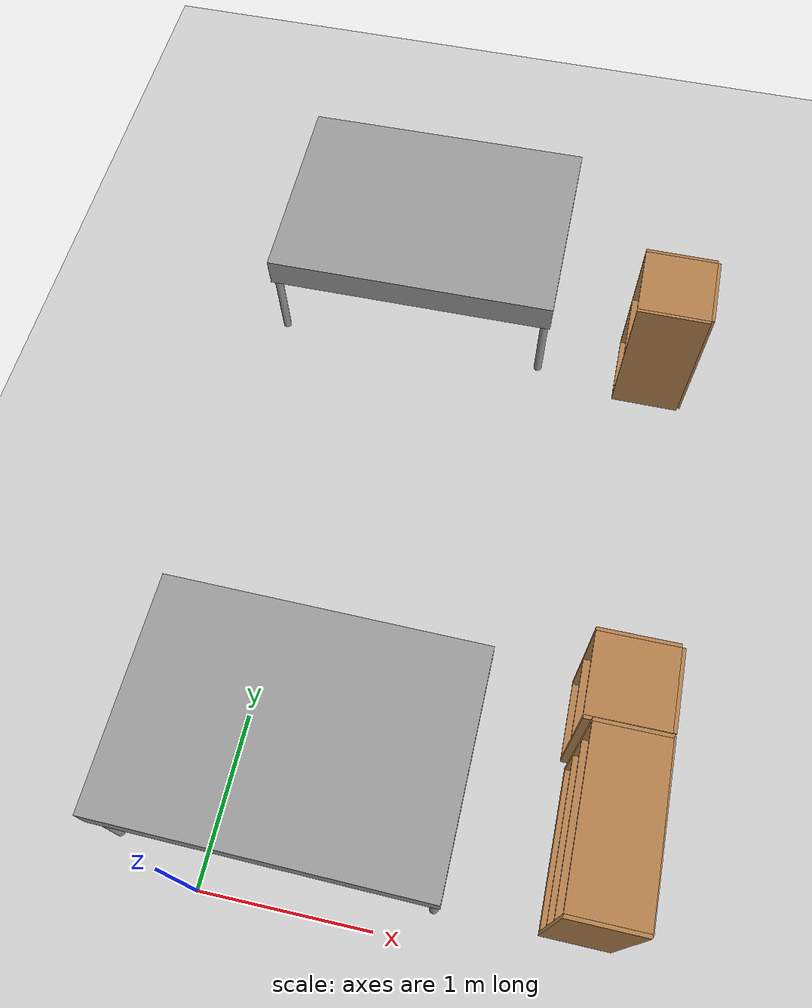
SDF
<sdf version="1.6">
 <world name="default">
  <model name="ground_plane">
   <static>1</static>
   <link name="link">
    <collision name="collision">
     <geometry><plane><normal>0 0 1</normal><size>100 100</size></plane></geometry>
     <surface>
      <contact><collide_bitmask>65535</collide_bitmask></contact>
      <friction><ode><mu>100</mu><mu2>50</mu2></ode></friction>
     </surface>
    </collision>
    <visual name="visual">
     <cast_shadows>0</cast_shadows>
     <geometry><plane><normal>0 0 1</normal><size>100 100</size></plane></geometry>
     <material>
      <script><uri>file://media/materials/scripts/gazebo.material</uri><name>Gazebo/Grey</name></script>
     </material>
    </visual>
   </link>
  </model>
  <model name="bed">
   <pose>0.544611 0.514424 0.569416 1e-06 0 -0.013106</pose>
   <link name="link_0">
    <pose>-0.152081 0.31625 0.061083 0 -0 0</pose>
    <inertial>
     <mass>1</mass>
     <inertia>
      <ixx>0.166667</ixx>
      <ixy>0</ixy>
      <ixz>0</ixz>
      <iyy>0.166667</iyy>
      <iyz>0</iyz>
      <izz>0.166667</izz>
     </inertia>
    </inertial>
    <visual name="visual">
     <geometry><box><size>1.905 1.345 0.205</size></box></geometry>
     <material>
      <lighting>1</lighting>
      <script><uri>file://media/materials/scripts/gazebo.material</uri><name>Gazebo/Grey</name></script>
      <shader type="pixel"><normal_map>__default__</normal_map></shader>
      <ambient>0.3 0.3 0.3 1</ambient>
      <diffuse>0.7 0.7 0.7 1</diffuse>
      <specular>0.01 0.01 0.01 1</specular>
      <emissive>0 0 0 1</emissive>
     </material>
    </visual>
    <collision name="collision">
     <geometry><box><size>1.905 1.345 0.205</size></box></geometry>
     <surface>
      <friction>
       <ode><mu>1</mu><mu2>1</mu2><fdir1>0 0 0</fdir1><slip1>0</slip1><slip2>0</slip2></ode>
       <torsional>
        <coefficient>1</coefficient>
        <patch_radius>0</patch_radius>
        <surface_radius>0</surface_radius>
        <use_patch_radius>1</use_patch_radius>
        <ode><slip>0</slip></ode>
       </torsional>
      </friction>
      <bounce><restitution_coefficient>0</restitution_coefficient><threshold>1e+06</threshold></bounce>
      <contact>
       <collide_without_contact>0</collide_without_contact>
       <collide_without_contact_bitmask>1</collide_without_contact_bitmask>
       <collide_bitmask>1</collide_bitmask>
       <ode>
        <soft_cfm>0</soft_cfm>
        <soft_erp>0.2</soft_erp>
        <kp>1e+13</kp>
        <kd>1</kd>
        <max_vel>0.01</max_vel>
        <min_depth>0</min_depth>
       </ode>
       <bullet>
        <split_impulse>1</split_impulse>
        <split_impulse_penetration_threshold>-0.01</split_impulse_penetration_threshold>
        <soft_cfm>0</soft_cfm>
        <soft_erp>0.2</soft_erp>
        <kp>1e+13</kp>
        <kd>1</kd>
       </bullet>
      </contact>
     </surface>
    </collision>
   </link>
   <link name="link_1">
    <pose>0.760419 0.94875 -0.305417 0 -0 0</pose>
    <inertial>
     <mass>1</mass>
     <inertia><ixx>0.145833</ixx><ixy>0</ixy><ixz>0</ixz><iyy>0.145833</iyy><iyz>0</iyz><izz>0.125</izz></inertia>
    </inertial>
    <visual name="visual">
     <geometry><cylinder><radius>0.026479</radius><length>0.528</length></cylinder></geometry>
     <material>
      <lighting>1</lighting>
      <script><uri>file://media/materials/scripts/gazebo.material</uri><name>Gazebo/Grey</name></script>
      <shader type="pixel"><normal_map>__default__</normal_map></shader>
      <ambient>0.3 0.3 0.3 1</ambient>
      <diffuse>0.7 0.7 0.7 1</diffuse>
      <specular>0.01 0.01 0.01 1</specular>
      <emissive>0 0 0 1</emissive>
     </material>
    </visual>
    <collision name="collision">
     <geometry><cylinder><radius>0.026479</radius><length>0.528</length></cylinder></geometry>
     <surface>
      <friction>
       <ode><mu>1</mu><mu2>1</mu2><fdir1>0 0 0</fdir1><slip1>0</slip1><slip2>0</slip2></ode>
       <torsional>
        <coefficient>1</coefficient>
        <patch_radius>0</patch_radius>
        <surface_radius>0</surface_radius>
        <use_patch_radius>1</use_patch_radius>
        <ode><slip>0</slip></ode>
       </torsional>
      </friction>
      <bounce><restitution_coefficient>0</restitution_coefficient><threshold>1e+06</threshold></bounce>
      <contact>
       <collide_without_contact>0</collide_without_contact>
       <collide_without_contact_bitmask>1</collide_without_contact_bitmask>
       <collide_bitmask>1</collide_bitmask>
       <ode>
        <soft_cfm>0</soft_cfm>
        <soft_erp>0.2</soft_erp>
        <kp>1e+13</kp>
        <kd>1</kd>
        <max_vel>0.01</max_vel>
        <min_depth>0</min_depth>
       </ode>
       <bullet>
        <split_impulse>1</split_impulse>
        <split_impulse_penetration_threshold>-0.01</split_impulse_penetration_threshold>
        <soft_cfm>0</soft_cfm>
        <soft_erp>0.2</soft_erp>
        <kp>1e+13</kp>
        <kd>1</kd>
       </bullet>
      </contact>
     </surface>
    </collision>
   </link>
   <link name="link_1_clone">
    <pose>0.760419 -0.31625 -0.305417 0 -0 0</pose>
    <inertial>
     <mass>1</mass>
     <inertia><ixx>0.145833</ixx><ixy>0</ixy><ixz>0</ixz><iyy>0.145833</iyy><iyz>0</iyz><izz>0.125</izz></inertia>
    </inertial>
    <visual name="visual">
     <geometry><cylinder><radius>0.026479</radius><length>0.528</length></cylinder></geometry>
     <material>
      <lighting>1</lighting>
      <script><uri>file://media/materials/scripts/gazebo.material</uri><name>Gazebo/Grey</name></script>
      <shader type="pixel"><normal_map>__default__</normal_map></shader>
      <ambient>0.3 0.3 0.3 1</ambient>
      <diffuse>0.7 0.7 0.7 1</diffuse>
      <specular>0.01 0.01 0.01 1</specular>
      <emissive>0 0 0 1</emissive>
     </material>
    </visual>
    <collision name="collision">
     <geometry><cylinder><radius>0.026479</radius><length>0.528</length></cylinder></geometry>
     <surface>
      <friction>
       <ode><mu>1</mu><mu2>1</mu2><fdir1>0 0 0</fdir1><slip1>0</slip1><slip2>0</slip2></ode>
       <torsional>
        <coefficient>1</coefficient>
        <patch_radius>0</patch_radius>
        <surface_radius>0</surface_radius>
        <use_patch_radius>1</use_patch_radius>
        <ode><slip>0</slip></ode>
       </torsional>
      </friction>
      <bounce><restitution_coefficient>0</restitution_coefficient><threshold>1e+06</threshold></bounce>
      <contact>
       <collide_without_contact>0</collide_without_contact>
       <collide_without_contact_bitmask>1</collide_without_contact_bitmask>
       <collide_bitmask>1</collide_bitmask>
       <ode>
        <soft_cfm>0</soft_cfm>
        <soft_erp>0.2</soft_erp>
        <kp>1e+13</kp>
        <kd>1</kd>
        <max_vel>0.01</max_vel>
        <min_depth>0</min_depth>
       </ode>
       <bullet>
        <split_impulse>1</split_impulse>
        <split_impulse_penetration_threshold>-0.01</split_impulse_penetration_threshold>
        <soft_cfm>0</soft_cfm>
        <soft_erp>0.2</soft_erp>
        <kp>1e+13</kp>
        <kd>1</kd>
       </bullet>
      </contact>
     </surface>
    </collision>
   </link>
   <link name="link_1_clone_clone">
    <pose>-1.06458 0.94875 -0.305417 0 -0 0</pose>
    <inertial>
     <mass>1</mass>
     <inertia><ixx>0.145833</ixx><ixy>0</ixy><ixz>0</ixz><iyy>0.145833</iyy><iyz>0</iyz><izz>0.125</izz></inertia>
    </inertial>
    <visual name="visual">
     <geometry><cylinder><radius>0.026479</radius><length>0.528</length></cylinder></geometry>
     <material>
      <lighting>1</lighting>
      <script><uri>file://media/materials/scripts/gazebo.material</uri><name>Gazebo/Grey</name></script>
      <shader type="pixel"><normal_map>__default__</normal_map></shader>
      <ambient>0.3 0.3 0.3 1</ambient>
      <diffuse>0.7 0.7 0.7 1</diffuse>
      <specular>0.01 0.01 0.01 1</specular>
      <emissive>0 0 0 1</emissive>
     </material>
    </visual>
    <collision name="collision">
     <geometry><cylinder><radius>0.026479</radius><length>0.528</length></cylinder></geometry>
     <surface>
      <friction>
       <ode><mu>1</mu><mu2>1</mu2><fdir1>0 0 0</fdir1><slip1>0</slip1><slip2>0</slip2></ode>
       <torsional>
        <coefficient>1</coefficient>
        <patch_radius>0</patch_radius>
        <surface_radius>0</surface_radius>
        <use_patch_radius>1</use_patch_radius>
        <ode><slip>0</slip></ode>
       </torsional>
      </friction>
      <bounce><restitution_coefficient>0</restitution_coefficient><threshold>1e+06</threshold></bounce>
      <contact>
       <collide_without_contact>0</collide_without_contact>
       <collide_without_contact_bitmask>1</collide_without_contact_bitmask>
       <collide_bitmask>1</collide_bitmask>
       <ode>
        <soft_cfm>0</soft_cfm>
        <soft_erp>0.2</soft_erp>
        <kp>1e+13</kp>
        <kd>1</kd>
        <max_vel>0.01</max_vel>
        <min_depth>0</min_depth>
       </ode>
       <bullet>
        <split_impulse>1</split_impulse>
        <split_impulse_penetration_threshold>-0.01</split_impulse_penetration_threshold>
        <soft_cfm>0</soft_cfm>
        <soft_erp>0.2</soft_erp>
        <kp>1e+13</kp>
        <kd>1</kd>
       </bullet>
      </contact>
     </surface>
    </collision>
   </link>
   <link name="link_1_clone_clone_clone">
    <pose>-1.06458 -0.31625 -0.305417 0 -0 0</pose>
    <inertial>
     <mass>1</mass>
     <inertia><ixx>0.145833</ixx><ixy>0</ixy><ixz>0</ixz><iyy>0.145833</iyy><iyz>0</iyz><izz>0.125</izz></inertia>
    </inertial>
    <visual name="visual">
     <geometry><cylinder><radius>0.026479</radius><length>0.528</length></cylinder></geometry>
     <material>
      <lighting>1</lighting>
      <script><uri>file://media/materials/scripts/gazebo.material</uri><name>Gazebo/Grey</name></script>
      <shader type="pixel"><normal_map>__default__</normal_map></shader>
      <ambient>0.3 0.3 0.3 1</ambient>
      <diffuse>0.7 0.7 0.7 1</diffuse>
      <specular>0.01 0.01 0.01 1</specular>
      <emissive>0 0 0 1</emissive>
     </material>
    </visual>
    <collision name="collision">
     <geometry><cylinder><radius>0.026479</radius><length>0.528</length></cylinder></geometry>
     <surface>
      <friction>
       <ode><mu>1</mu><mu2>1</mu2><fdir1>0 0 0</fdir1><slip1>0</slip1><slip2>0</slip2></ode>
       <torsional>
        <coefficient>1</coefficient>
        <patch_radius>0</patch_radius>
        <surface_radius>0</surface_radius>
        <use_patch_radius>1</use_patch_radius>
        <ode><slip>0</slip></ode>
       </torsional>
      </friction>
      <bounce><restitution_coefficient>0</restitution_coefficient><threshold>1e+06</threshold></bounce>
      <contact>
       <collide_without_contact>0</collide_without_contact>
       <collide_without_contact_bitmask>1</collide_without_contact_bitmask>
       <collide_bitmask>1</collide_bitmask>
       <ode>
        <soft_cfm>0</soft_cfm>
        <soft_erp>0.2</soft_erp>
        <kp>1e+13</kp>
        <kd>1</kd>
        <max_vel>0.01</max_vel>
        <min_depth>0</min_depth>
       </ode>
       <bullet>
        <split_impulse>1</split_impulse>
        <split_impulse_penetration_threshold>-0.01</split_impulse_penetration_threshold>
        <soft_cfm>0</soft_cfm>
        <soft_erp>0.2</soft_erp>
        <kp>1e+13</kp>
        <kd>1</kd>
       </bullet>
      </contact>
     </surface>
    </collision>
   </link>
   <joint name="link_0_JOINT_0" type="fixed">
    <parent>link_0</parent>
    <child>link_1</child>
    <physics>
     <ode><limit><cfm>0</cfm><erp>0.2</erp></limit><suspension><cfm>0</cfm><erp>0.2</erp></suspension></ode>
    </physics>
   </joint>
   <joint name="link_0_JOINT_1" type="fixed">
    <parent>link_0</parent>
    <child>link_1_clone</child>
    <physics>
     <ode><limit><cfm>0</cfm><erp>0.2</erp></limit><suspension><cfm>0</cfm><erp>0.2</erp></suspension></ode>
    </physics>
   </joint>
   <joint name="link_0_JOINT_2" type="fixed">
    <parent>link_0</parent>
    <child>link_1_clone_clone</child>
    <physics>
     <ode><limit><cfm>0</cfm><erp>0.2</erp></limit><suspension><cfm>0</cfm><erp>0.2</erp></suspension></ode>
    </physics>
   </joint>
   <joint name="link_0_JOINT_3" type="fixed">
    <parent>link_0</parent>
    <child>link_1_clone_clone_clone</child>
    <pose>-0.01 0 0 0 -0 0</pose>
    <physics>
     <ode><limit><cfm>0</cfm><erp>0.2</erp></limit><suspension><cfm>0</cfm><erp>0.2</erp></suspension></ode>
    </physics>
   </joint>
   <static>0</static>
  </model>
  <model name="cabinet">
   <static>1</static>
   <link name="cabinet_bottom_plate">
    <inertial>
     <pose>0 0 -1 0 -0 0</pose>
     <inertia><ixx>2.05</ixx><ixy>0</ixy><ixz>0</ixz><iyy>2.05</iyy><iyz>0</iyz><izz>2.05</izz></inertia>
     <mass>25</mass>
    </inertial>
    <collision name="cabinet_bottom_plate_geom">
     <pose>0 0 0.01 0 -0 0</pose>
     <geometry><box><size>0.45 0.45 0.02</size></box></geometry>
    </collision>
    <visual name="cabinet_bottom_plate_geom_visual">
     <pose>0 0 0.01 0 -0 0</pose>
     <geometry><box><size>0.45 0.45 0.02</size></box></geometry>
     <material>
      <script><uri>file://media/materials/scripts/gazebo.material</uri><name>Gazebo/Wood</name></script>
     </material>
    </visual>
    <collision name="cabinet_bottom_plate_geom_cabinet_back_plate">
     <pose>0.235 0 0.51 0 -0 0</pose>
     <geometry><box><size>0.02 0.45 1.02</size></box></geometry>
    </collision>
    <visual name="cabinet_bottom_plate_geom_cabinet_back_plate_visual">
     <pose>0.235 0 0.51 0 -0 0</pose>
     <geometry><box><size>0.02 0.45 1.02</size></box></geometry>
     <material>
      <script><uri>file://media/materials/scripts/gazebo.material</uri><name>Gazebo/Wood</name></script>
     </material>
    </visual>
    <collision name="cabinet_bottom_plate_geom_cabinet_left_plate">
     <pose>0 0.235 0.51 0 -0 0</pose>
     <geometry><box><size>0.45 0.02 1.02</size></box></geometry>
    </collision>
    <visual name="cabinet_bottom_plate_geom_cabinet_left_plate_visual">
     <pose>0 0.235 0.51 0 -0 0</pose>
     <geometry><box><size>0.45 0.02 1.02</size></box></geometry>
     <material>
      <script><uri>file://media/materials/scripts/gazebo.material</uri><name>Gazebo/Wood</name></script>
     </material>
    </visual>
    <collision name="cabinet_bottom_plate_geom_cabinet_middle_plate">
     <pose>0 0 0.51 0 -0 0</pose>
     <geometry><box><size>0.45 0.45 0.02</size></box></geometry>
    </collision>
    <visual name="cabinet_bottom_plate_geom_cabinet_middle_plate_visual">
     <pose>0 0 0.51 0 -0 0</pose>
     <geometry><box><size>0.45 0.45 0.02</size></box></geometry>
     <material>
      <script><uri>file://media/materials/scripts/gazebo.material</uri><name>Gazebo/Wood</name></script>
     </material>
    </visual>
    <collision name="cabinet_bottom_plate_geom_cabinet_right_plate">
     <pose>0 -0.235 0.51 0 -0 0</pose>
     <geometry><box><size>0.45 0.02 1.02</size></box></geometry>
    </collision>
    <visual name="cabinet_bottom_plate_geom_cabinet_right_plate_visual">
     <pose>0 -0.235 0.51 0 -0 0</pose>
     <geometry><box><size>0.45 0.02 1.02</size></box></geometry>
     <material>
      <script><uri>file://media/materials/scripts/gazebo.material</uri><name>Gazebo/Wood</name></script>
     </material>
    </visual>
    <collision name="cabinet_bottom_plate_geom_cabinet_top_plate">
     <pose>0 0 1.01 0 -0 0</pose>
     <geometry><box><size>0.45 0.45 0.02</size></box></geometry>
    </collision>
    <visual name="cabinet_bottom_plate_geom_cabinet_top_plate_visual">
     <pose>0 0 1.01 0 -0 0</pose>
     <geometry><box><size>0.45 0.45 0.02</size></box></geometry>
     <material>
      <script><uri>file://media/materials/scripts/gazebo.material</uri><name>Gazebo/Wood</name></script>
     </material>
    </visual>
   </link>
   <pose>2.0821 1.37187 0 0 -0 0</pose>
  </model>
  <model name="bookshelf">
   <static>1</static>
   <link name="link">
    <inertial><mass>1</mass></inertial>
    <collision name="back">
     <pose>0 0.005 0.6 0 -0 0</pose>
     <geometry><box><size>0.9 0.01 1.2</size></box></geometry>
    </collision>
    <visual name="visual1">
     <pose>0 0.005 0.6 0 -0 0</pose>
     <geometry><box><size>0.9 0.01 1.2</size></box></geometry>
     <material>
      <script><uri>file://media/materials/scripts/gazebo.material</uri><name>Gazebo/Wood</name></script>
     </material>
    </visual>
    <collision name="left_side">
     <pose>0.45 -0.195 0.6 0 -0 0</pose>
     <geometry><box><size>0.02 0.4 1.2</size></box></geometry>
    </collision>
    <visual name="visual2">
     <pose>0.45 -0.195 0.6 0 -0 0</pose>
     <geometry><box><size>0.02 0.4 1.2</size></box></geometry>
     <material>
      <script><uri>file://media/materials/scripts/gazebo.material</uri><name>Gazebo/Wood</name></script>
     </material>
    </visual>
    <collision name="right_side">
     <pose>-0.45 -0.195 0.6 0 -0 0</pose>
     <geometry><box><size>0.02 0.4 1.2</size></box></geometry>
    </collision>
    <visual name="visual3">
     <pose>-0.45 -0.195 0.6 0 -0 0</pose>
     <geometry><box><size>0.02 0.4 1.2</size></box></geometry>
     <material>
      <script><uri>file://media/materials/scripts/gazebo.material</uri><name>Gazebo/Wood</name></script>
     </material>
    </visual>
    <collision name="bottom">
     <pose>0 -0.195 0.03 0 -0 0</pose>
     <geometry><box><size>0.88 0.4 0.06</size></box></geometry>
    </collision>
    <visual name="visual4">
     <pose>0 -0.195 0.03 0 -0 0</pose>
     <geometry><box><size>0.88 0.4 0.06</size></box></geometry>
     <material>
      <script><uri>file://media/materials/scripts/gazebo.material</uri><name>Gazebo/Wood</name></script>
     </material>
    </visual>
    <collision name="top">
     <pose>0 -0.195 1.19 0 -0 0</pose>
     <geometry><box><size>0.88 0.4 0.02</size></box></geometry>
    </collision>
    <visual name="visual5">
     <pose>0 -0.195 1.19 0 -0 0</pose>
     <geometry><box><size>0.88 0.4 0.02</size></box></geometry>
     <material>
      <script><uri>file://media/materials/scripts/gazebo.material</uri><name>Gazebo/Wood</name></script>
     </material>
    </visual>
    <collision name="low_shelf">
     <pose>0 -0.195 0.43 0 -0 0</pose>
     <geometry><box><size>0.88 0.4 0.02</size></box></geometry>
    </collision>
    <visual name="visual6">
     <pose>0 -0.195 0.43 0 -0 0</pose>
     <geometry><box><size>0.88 0.4 0.02</size></box></geometry>
     <material>
      <script><uri>file://media/materials/scripts/gazebo.material</uri><name>Gazebo/Wood</name></script>
     </material>
    </visual>
    <collision name="high_shelf">
     <pose>0 -0.195 0.8 0 -0 0</pose>
     <geometry><box><size>0.88 0.4 0.02</size></box></geometry>
    </collision>
    <visual name="visual7">
     <pose>0 -0.195 0.8 0 -0 0</pose>
     <geometry><box><size>0.88 0.4 0.02</size></box></geometry>
     <material>
      <script><uri>file://media/materials/scripts/gazebo.material</uri><name>Gazebo/Wood</name></script>
     </material>
    </visual>
   </link>
   <pose>2.2813 0.63363 0 0 0 -1.57404</pose>
  </model>
  <model name="bed_clone_2">
   <link name="link_0">
    <pose>-0.152081 0.31625 0.061083 0 -0 0</pose>
    <inertial>
     <mass>1</mass>
     <inertia>
      <ixx>0.166667</ixx>
      <ixy>0</ixy>
      <ixz>0</ixz>
      <iyy>0.166667</iyy>
      <iyz>0</iyz>
      <izz>0.166667</izz>
     </inertia>
    </inertial>
    <visual name="visual">
     <geometry><box><size>1.905 1.345 0.205</size></box></geometry>
     <material>
      <lighting>1</lighting>
      <script><uri>file://media/materials/scripts/gazebo.material</uri><name>Gazebo/Grey</name></script>
      <shader type="pixel"><normal_map>__default__</normal_map></shader>
      <ambient>0.3 0.3 0.3 1</ambient>
      <diffuse>0.7 0.7 0.7 1</diffuse>
      <specular>0.01 0.01 0.01 1</specular>
      <emissive>0 0 0 1</emissive>
     </material>
    </visual>
    <collision name="collision">
     <geometry><box><size>1.905 1.345 0.205</size></box></geometry>
     <surface>
      <friction>
       <ode><mu>1</mu><mu2>1</mu2><fdir1>0 0 0</fdir1><slip1>0</slip1><slip2>0</slip2></ode>
       <torsional>
        <coefficient>1</coefficient>
        <patch_radius>0</patch_radius>
        <surface_radius>0</surface_radius>
        <use_patch_radius>1</use_patch_radius>
        <ode><slip>0</slip></ode>
       </torsional>
      </friction>
      <bounce><restitution_coefficient>0</restitution_coefficient><threshold>1e+06</threshold></bounce>
      <contact>
       <collide_without_contact>0</collide_without_contact>
       <collide_without_contact_bitmask>1</collide_without_contact_bitmask>
       <collide_bitmask>1</collide_bitmask>
       <ode>
        <soft_cfm>0</soft_cfm>
        <soft_erp>0.2</soft_erp>
        <kp>1e+13</kp>
        <kd>1</kd>
        <max_vel>0.01</max_vel>
        <min_depth>0</min_depth>
       </ode>
       <bullet>
        <split_impulse>1</split_impulse>
        <split_impulse_penetration_threshold>-0.01</split_impulse_penetration_threshold>
        <soft_cfm>0</soft_cfm>
        <soft_erp>0.2</soft_erp>
        <kp>1e+13</kp>
        <kd>1</kd>
       </bullet>
      </contact>
     </surface>
    </collision>
   </link>
   <link name="link_1">
    <pose>0.760419 0.94875 -0.305417 0 -0 0</pose>
    <inertial>
     <mass>1</mass>
     <inertia><ixx>0.145833</ixx><ixy>0</ixy><ixz>0</ixz><iyy>0.145833</iyy><iyz>0</iyz><izz>0.125</izz></inertia>
    </inertial>
    <visual name="visual">
     <geometry><cylinder><radius>0.026479</radius><length>0.528</length></cylinder></geometry>
     <material>
      <lighting>1</lighting>
      <script><uri>file://media/materials/scripts/gazebo.material</uri><name>Gazebo/Grey</name></script>
      <shader type="pixel"><normal_map>__default__</normal_map></shader>
      <ambient>0.3 0.3 0.3 1</ambient>
      <diffuse>0.7 0.7 0.7 1</diffuse>
      <specular>0.01 0.01 0.01 1</specular>
      <emissive>0 0 0 1</emissive>
     </material>
    </visual>
    <collision name="collision">
     <geometry><cylinder><radius>0.026479</radius><length>0.528</length></cylinder></geometry>
     <surface>
      <friction>
       <ode><mu>1</mu><mu2>1</mu2><fdir1>0 0 0</fdir1><slip1>0</slip1><slip2>0</slip2></ode>
       <torsional>
        <coefficient>1</coefficient>
        <patch_radius>0</patch_radius>
        <surface_radius>0</surface_radius>
        <use_patch_radius>1</use_patch_radius>
        <ode><slip>0</slip></ode>
       </torsional>
      </friction>
      <bounce><restitution_coefficient>0</restitution_coefficient><threshold>1e+06</threshold></bounce>
      <contact>
       <collide_without_contact>0</collide_without_contact>
       <collide_without_contact_bitmask>1</collide_without_contact_bitmask>
       <collide_bitmask>1</collide_bitmask>
       <ode>
        <soft_cfm>0</soft_cfm>
        <soft_erp>0.2</soft_erp>
        <kp>1e+13</kp>
        <kd>1</kd>
        <max_vel>0.01</max_vel>
        <min_depth>0</min_depth>
       </ode>
       <bullet>
        <split_impulse>1</split_impulse>
        <split_impulse_penetration_threshold>-0.01</split_impulse_penetration_threshold>
        <soft_cfm>0</soft_cfm>
        <soft_erp>0.2</soft_erp>
        <kp>1e+13</kp>
        <kd>1</kd>
       </bullet>
      </contact>
     </surface>
    </collision>
   </link>
   <link name="link_1_clone">
    <pose>0.760419 -0.31625 -0.305417 0 -0 0</pose>
    <inertial>
     <mass>1</mass>
     <inertia><ixx>0.145833</ixx><ixy>0</ixy><ixz>0</ixz><iyy>0.145833</iyy><iyz>0</iyz><izz>0.125</izz></inertia>
    </inertial>
    <visual name="visual">
     <geometry><cylinder><radius>0.026479</radius><length>0.528</length></cylinder></geometry>
     <material>
      <lighting>1</lighting>
      <script><uri>file://media/materials/scripts/gazebo.material</uri><name>Gazebo/Grey</name></script>
      <shader type="pixel"><normal_map>__default__</normal_map></shader>
      <ambient>0.3 0.3 0.3 1</ambient>
      <diffuse>0.7 0.7 0.7 1</diffuse>
      <specular>0.01 0.01 0.01 1</specular>
      <emissive>0 0 0 1</emissive>
     </material>
    </visual>
    <collision name="collision">
     <geometry><cylinder><radius>0.026479</radius><length>0.528</length></cylinder></geometry>
     <surface>
      <friction>
       <ode><mu>1</mu><mu2>1</mu2><fdir1>0 0 0</fdir1><slip1>0</slip1><slip2>0</slip2></ode>
       <torsional>
        <coefficient>1</coefficient>
        <patch_radius>0</patch_radius>
        <surface_radius>0</surface_radius>
        <use_patch_radius>1</use_patch_radius>
        <ode><slip>0</slip></ode>
       </torsional>
      </friction>
      <bounce><restitution_coefficient>0</restitution_coefficient><threshold>1e+06</threshold></bounce>
      <contact>
       <collide_without_contact>0</collide_without_contact>
       <collide_without_contact_bitmask>1</collide_without_contact_bitmask>
       <collide_bitmask>1</collide_bitmask>
       <ode>
        <soft_cfm>0</soft_cfm>
        <soft_erp>0.2</soft_erp>
        <kp>1e+13</kp>
        <kd>1</kd>
        <max_vel>0.01</max_vel>
        <min_depth>0</min_depth>
       </ode>
       <bullet>
        <split_impulse>1</split_impulse>
        <split_impulse_penetration_threshold>-0.01</split_impulse_penetration_threshold>
        <soft_cfm>0</soft_cfm>
        <soft_erp>0.2</soft_erp>
        <kp>1e+13</kp>
        <kd>1</kd>
       </bullet>
      </contact>
     </surface>
    </collision>
   </link>
   <link name="link_1_clone_clone">
    <pose>-1.06458 0.94875 -0.305417 0 -0 0</pose>
    <inertial>
     <mass>1</mass>
     <inertia><ixx>0.145833</ixx><ixy>0</ixy><ixz>0</ixz><iyy>0.145833</iyy><iyz>0</iyz><izz>0.125</izz></inertia>
    </inertial>
    <visual name="visual">
     <geometry><cylinder><radius>0.026479</radius><length>0.528</length></cylinder></geometry>
     <material>
      <lighting>1</lighting>
      <script><uri>file://media/materials/scripts/gazebo.material</uri><name>Gazebo/Grey</name></script>
      <shader type="pixel"><normal_map>__default__</normal_map></shader>
      <ambient>0.3 0.3 0.3 1</ambient>
      <diffuse>0.7 0.7 0.7 1</diffuse>
      <specular>0.01 0.01 0.01 1</specular>
      <emissive>0 0 0 1</emissive>
     </material>
    </visual>
    <collision name="collision">
     <geometry><cylinder><radius>0.026479</radius><length>0.528</length></cylinder></geometry>
     <surface>
      <friction>
       <ode><mu>1</mu><mu2>1</mu2><fdir1>0 0 0</fdir1><slip1>0</slip1><slip2>0</slip2></ode>
       <torsional>
        <coefficient>1</coefficient>
        <patch_radius>0</patch_radius>
        <surface_radius>0</surface_radius>
        <use_patch_radius>1</use_patch_radius>
        <ode><slip>0</slip></ode>
       </torsional>
      </friction>
      <bounce><restitution_coefficient>0</restitution_coefficient><threshold>1e+06</threshold></bounce>
      <contact>
       <collide_without_contact>0</collide_without_contact>
       <collide_without_contact_bitmask>1</collide_without_contact_bitmask>
       <collide_bitmask>1</collide_bitmask>
       <ode>
        <soft_cfm>0</soft_cfm>
        <soft_erp>0.2</soft_erp>
        <kp>1e+13</kp>
        <kd>1</kd>
        <max_vel>0.01</max_vel>
        <min_depth>0</min_depth>
       </ode>
       <bullet>
        <split_impulse>1</split_impulse>
        <split_impulse_penetration_threshold>-0.01</split_impulse_penetration_threshold>
        <soft_cfm>0</soft_cfm>
        <soft_erp>0.2</soft_erp>
        <kp>1e+13</kp>
        <kd>1</kd>
       </bullet>
      </contact>
     </surface>
    </collision>
   </link>
   <link name="link_1_clone_clone_clone">
    <pose>-1.06458 -0.31625 -0.305417 0 -0 0</pose>
    <inertial>
     <mass>1</mass>
     <inertia><ixx>0.145833</ixx><ixy>0</ixy><ixz>0</ixz><iyy>0.145833</iyy><iyz>0</iyz><izz>0.125</izz></inertia>
    </inertial>
    <visual name="visual">
     <geometry><cylinder><radius>0.026479</radius><length>0.528</length></cylinder></geometry>
     <material>
      <lighting>1</lighting>
      <script><uri>file://media/materials/scripts/gazebo.material</uri><name>Gazebo/Grey</name></script>
      <shader type="pixel"><normal_map>__default__</normal_map></shader>
      <ambient>0.3 0.3 0.3 1</ambient>
      <diffuse>0.7 0.7 0.7 1</diffuse>
      <specular>0.01 0.01 0.01 1</specular>
      <emissive>0 0 0 1</emissive>
     </material>
    </visual>
    <collision name="collision">
     <geometry><cylinder><radius>0.026479</radius><length>0.528</length></cylinder></geometry>
     <surface>
      <friction>
       <ode><mu>1</mu><mu2>1</mu2><fdir1>0 0 0</fdir1><slip1>0</slip1><slip2>0</slip2></ode>
       <torsional>
        <coefficient>1</coefficient>
        <patch_radius>0</patch_radius>
        <surface_radius>0</surface_radius>
        <use_patch_radius>1</use_patch_radius>
        <ode><slip>0</slip></ode>
       </torsional>
      </friction>
      <bounce><restitution_coefficient>0</restitution_coefficient><threshold>1e+06</threshold></bounce>
      <contact>
       <collide_without_contact>0</collide_without_contact>
       <collide_without_contact_bitmask>1</collide_without_contact_bitmask>
       <collide_bitmask>1</collide_bitmask>
       <ode>
        <soft_cfm>0</soft_cfm>
        <soft_erp>0.2</soft_erp>
        <kp>1e+13</kp>
        <kd>1</kd>
        <max_vel>0.01</max_vel>
        <min_depth>0</min_depth>
       </ode>
       <bullet>
        <split_impulse>1</split_impulse>
        <split_impulse_penetration_threshold>-0.01</split_impulse_penetration_threshold>
        <soft_cfm>0</soft_cfm>
        <soft_erp>0.2</soft_erp>
        <kp>1e+13</kp>
        <kd>1</kd>
       </bullet>
      </contact>
     </surface>
    </collision>
   </link>
   <joint name="link_0_JOINT_0" type="fixed">
    <parent>link_0</parent>
    <child>link_1</child>
    <physics>
     <ode><limit><cfm>0</cfm><erp>0.2</erp></limit><suspension><cfm>0</cfm><erp>0.2</erp></suspension></ode>
    </physics>
   </joint>
   <joint name="link_0_JOINT_1" type="fixed">
    <parent>link_0</parent>
    <child>link_1_clone</child>
    <physics>
     <ode><limit><cfm>0</cfm><erp>0.2</erp></limit><suspension><cfm>0</cfm><erp>0.2</erp></suspension></ode>
    </physics>
   </joint>
   <joint name="link_0_JOINT_2" type="fixed">
    <parent>link_0</parent>
    <child>link_1_clone_clone</child>
    <physics>
     <ode><limit><cfm>0</cfm><erp>0.2</erp></limit><suspension><cfm>0</cfm><erp>0.2</erp></suspension></ode>
    </physics>
   </joint>
   <joint name="link_0_JOINT_3" type="fixed">
    <parent>link_0</parent>
    <child>link_1_clone_clone_clone</child>
    <pose>-0.01 0 0 0 -0 0</pose>
    <physics>
     <ode><limit><cfm>0</cfm><erp>0.2</erp></limit><suspension><cfm>0</cfm><erp>0.2</erp></suspension></ode>
    </physics>
   </joint>
   <static>0</static>
   <pose>0.511001 4.11999 0.569416 -2e-06 -3e-06 0.006972</pose>
  </model>
  <model name="cabinet_clone">
   <static>1</static>
   <link name="cabinet_bottom_plate">
    <inertial>
     <pose>0 0 -1 0 -0 0</pose>
     <inertia><ixx>2.05</ixx><ixy>0</ixy><ixz>0</ixz><iyy>2.05</iyy><iyz>0</iyz><izz>2.05</izz></inertia>
     <mass>25</mass>
    </inertial>
    <collision name="cabinet_bottom_plate_geom">
     <pose>0 0 0.01 0 -0 0</pose>
     <geometry><box><size>0.45 0.45 0.02</size></box></geometry>
    </collision>
    <visual name="cabinet_bottom_plate_geom_visual">
     <pose>0 0 0.01 0 -0 0</pose>
     <geometry><box><size>0.45 0.45 0.02</size></box></geometry>
     <material>
      <script><uri>file://media/materials/scripts/gazebo.material</uri><name>Gazebo/Wood</name></script>
     </material>
    </visual>
    <collision name="cabinet_bottom_plate_geom_cabinet_back_plate">
     <pose>0.235 0 0.51 0 -0 0</pose>
     <geometry><box><size>0.02 0.45 1.02</size></box></geometry>
    </collision>
    <visual name="cabinet_bottom_plate_geom_cabinet_back_plate_visual">
     <pose>0.235 0 0.51 0 -0 0</pose>
     <geometry><box><size>0.02 0.45 1.02</size></box></geometry>
     <material>
      <script><uri>file://media/materials/scripts/gazebo.material</uri><name>Gazebo/Wood</name></script>
     </material>
    </visual>
    <collision name="cabinet_bottom_plate_geom_cabinet_left_plate">
     <pose>0 0.235 0.51 0 -0 0</pose>
     <geometry><box><size>0.45 0.02 1.02</size></box></geometry>
    </collision>
    <visual name="cabinet_bottom_plate_geom_cabinet_left_plate_visual">
     <pose>0 0.235 0.51 0 -0 0</pose>
     <geometry><box><size>0.45 0.02 1.02</size></box></geometry>
     <material>
      <script><uri>file://media/materials/scripts/gazebo.material</uri><name>Gazebo/Wood</name></script>
     </material>
    </visual>
    <collision name="cabinet_bottom_plate_geom_cabinet_middle_plate">
     <pose>0 0 0.51 0 -0 0</pose>
     <geometry><box><size>0.45 0.45 0.02</size></box></geometry>
    </collision>
    <visual name="cabinet_bottom_plate_geom_cabinet_middle_plate_visual">
     <pose>0 0 0.51 0 -0 0</pose>
     <geometry><box><size>0.45 0.45 0.02</size></box></geometry>
     <material>
      <script><uri>file://media/materials/scripts/gazebo.material</uri><name>Gazebo/Wood</name></script>
     </material>
    </visual>
    <collision name="cabinet_bottom_plate_geom_cabinet_right_plate">
     <pose>0 -0.235 0.51 0 -0 0</pose>
     <geometry><box><size>0.45 0.02 1.02</size></box></geometry>
    </collision>
    <visual name="cabinet_bottom_plate_geom_cabinet_right_plate_visual">
     <pose>0 -0.235 0.51 0 -0 0</pose>
     <geometry><box><size>0.45 0.02 1.02</size></box></geometry>
     <material>
      <script><uri>file://media/materials/scripts/gazebo.material</uri><name>Gazebo/Wood</name></script>
     </material>
    </visual>
    <collision name="cabinet_bottom_plate_geom_cabinet_top_plate">
     <pose>0 0 1.01 0 -0 0</pose>
     <geometry><box><size>0.45 0.45 0.02</size></box></geometry>
    </collision>
    <visual name="cabinet_bottom_plate_geom_cabinet_top_plate_visual">
     <pose>0 0 1.01 0 -0 0</pose>
     <geometry><box><size>0.45 0.45 0.02</size></box></geometry>
     <material>
      <script><uri>file://media/materials/scripts/gazebo.material</uri><name>Gazebo/Wood</name></script>
     </material>
    </visual>
   </link>
   <pose>2.04309 3.90657 0 0 -0 0</pose>
  </model>
 </world>
</sdf>
